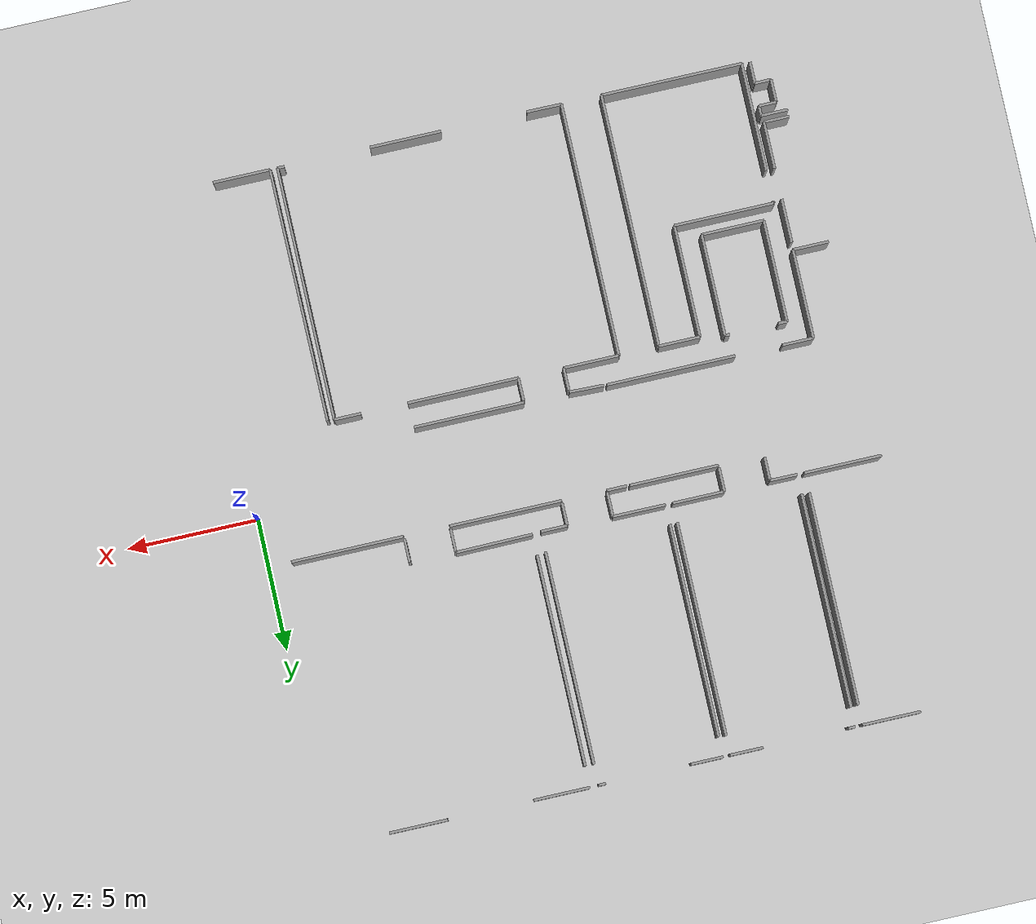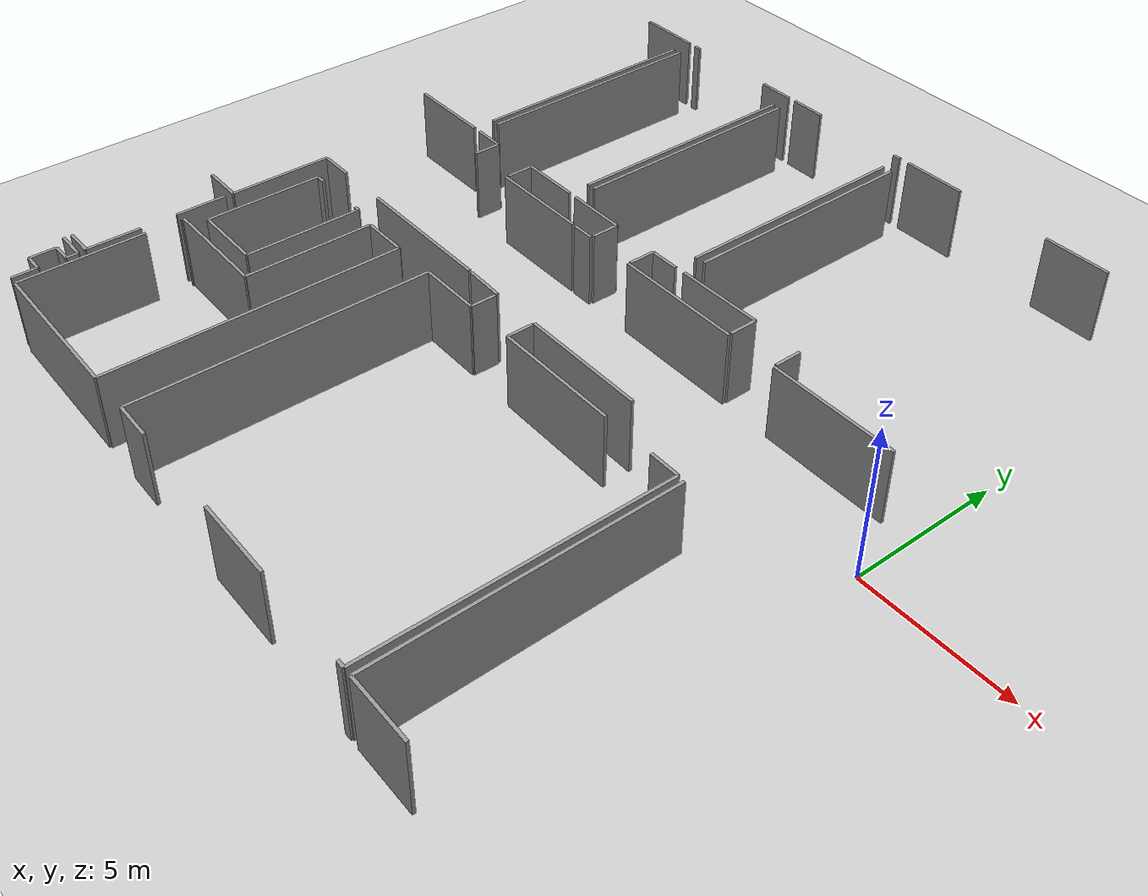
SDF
<sdf version="1.6">
 <world name="default">
  <model name="ground_plane">
   <static>1</static>
   <link name="link">
    <collision name="collision">
     <geometry><plane><normal>0 0 1</normal><size>100 100</size></plane></geometry>
     <surface><friction><ode><mu>100</mu><mu2>50</mu2></ode></friction></surface>
    </collision>
    <visual name="visual">
     <cast_shadows>0</cast_shadows>
     <geometry><plane><normal>0 0 1</normal><size>100 100</size></plane></geometry>
     <material>
      <script><uri>file://media/materials/scripts/gazebo.material</uri><name>Gazebo/Grey</name></script>
     </material>
    </visual>
   </link>
  </model>
  <model name="50052753">
   <static>1</static>
   <link name="Wall_25">
    <collision name="Wall_25_Collision">
     <geometry><box><size>3.38468759316 0.1 2.5</size></box></geometry>
     <pose>1.69234379658 0 1.25 0 0 0</pose>
    </collision>
    <visual name="Wall_25_Visual">
     <pose>1.69234379658 0 1.25 0 0 0</pose>
     <geometry><box><size>3.38468759316 0.1 2.5</size></box></geometry>
     <material>
      <script><uri>file://media/materials/scripts/gazebo.material</uri><name>Gazebo/Grey</name></script>
      <ambient>1 1 1 1</ambient>
     </material>
    </visual>
    <pose>21.7933186607 -10.6018533201 0 0 0 0.0</pose>
   </link>
   <link name="Wall_26">
    <collision name="Wall_26_Collision">
     <geometry><box><size>4.89334847111 0.1 2.5</size></box></geometry>
     <pose>2.44667423555 0 1.25 0 0 0</pose>
    </collision>
    <visual name="Wall_26_Visual">
     <pose>2.44667423555 0 1.25 0 0 0</pose>
     <geometry><box><size>4.89334847111 0.1 2.5</size></box></geometry>
     <material>
      <script><uri>file://media/materials/scripts/gazebo.material</uri><name>Gazebo/Grey</name></script>
      <ambient>1 1 1 1</ambient>
     </material>
    </visual>
    <pose>25.1780062538 -14.44397227 0 0 0 3.14159265359</pose>
   </link>
   <link name="Wall_27">
    <collision name="Wall_27_Collision">
     <geometry><box><size>1.17909718831 0.1 2.5</size></box></geometry>
     <pose>0.589548594153 0 1.25 0 0 0</pose>
    </collision>
    <visual name="Wall_27_Visual">
     <pose>0.589548594153 0 1.25 0 0 0</pose>
     <geometry><box><size>1.17909718831 0.1 2.5</size></box></geometry>
     <material>
      <script><uri>file://media/materials/scripts/gazebo.material</uri><name>Gazebo/Grey</name></script>
      <ambient>1 1 1 1</ambient>
     </material>
    </visual>
    <pose>18.4762436336 -14.44397227 0 0 0 3.14159265359</pose>
   </link>
   <link name="Wall_28">
    <collision name="Wall_28_Collision">
     <geometry><box><size>3.38570241591 0.1 2.5</size></box></geometry>
     <pose>1.69285120796 0 1.25 0 0 0</pose>
    </collision>
    <visual name="Wall_28_Visual">
     <pose>1.69285120796 0 1.25 0 0 0</pose>
     <geometry><box><size>3.38570241591 0.1 2.5</size></box></geometry>
     <material>
      <script><uri>file://media/materials/scripts/gazebo.material</uri><name>Gazebo/Grey</name></script>
      <ambient>1 1 1 1</ambient>
     </material>
    </visual>
    <pose>17.2971464453 -14.44397227 0 0 0 -1.57079632679</pose>
   </link>
   <link name="Wall_29">
    <collision name="Wall_29_Collision">
     <geometry><box><size>1.36151157849 0.1 2.5</size></box></geometry>
     <pose>0.680755789247 0 1.25 0 0 0</pose>
    </collision>
    <visual name="Wall_29_Visual">
     <pose>0.680755789247 0 1.25 0 0 0</pose>
     <geometry><box><size>1.36151157849 0.1 2.5</size></box></geometry>
     <material>
      <script><uri>file://media/materials/scripts/gazebo.material</uri><name>Gazebo/Grey</name></script>
      <ambient>1 1 1 1</ambient>
     </material>
    </visual>
    <pose>17.2971464453 -17.8296746859 0 0 0 3.14159265359</pose>
   </link>
   <link name="Wall_33">
    <collision name="Wall_33_Collision">
     <geometry><box><size>2.20825431458 0.1 2.5</size></box></geometry>
     <pose>1.10412715729 0 1.25 0 0 0</pose>
    </collision>
    <visual name="Wall_33_Visual">
     <pose>1.10412715729 0 1.25 0 0 0</pose>
     <geometry><box><size>2.20825431458 0.1 2.5</size></box></geometry>
     <material>
      <script><uri>file://media/materials/scripts/gazebo.material</uri><name>Gazebo/Grey</name></script>
      <ambient>1 1 1 1</ambient>
     </material>
    </visual>
    <pose>16.5268959743 -0.0228335119844 0 0 0 0.0</pose>
   </link>
   <link name="Wall_34">
    <collision name="Wall_34_Collision">
     <geometry><box><size>8.09524111554 0.1 2.5</size></box></geometry>
     <pose>4.04762055777 0 1.25 0 0 0</pose>
    </collision>
    <visual name="Wall_34_Visual">
     <pose>4.04762055777 0 1.25 0 0 0</pose>
     <geometry><box><size>8.09524111554 0.1 2.5</size></box></geometry>
     <material>
      <script><uri>file://media/materials/scripts/gazebo.material</uri><name>Gazebo/Grey</name></script>
      <ambient>1 1 1 1</ambient>
     </material>
    </visual>
    <pose>18.7351502889 -0.773548644894 0 0 0 -1.57079632679</pose>
   </link>
   <link name="Wall_35">
    <collision name="Wall_35_Collision">
     <geometry><box><size>2.93080811604 0.1 2.5</size></box></geometry>
     <pose>1.46540405802 0 1.25 0 0 0</pose>
    </collision>
    <visual name="Wall_35_Visual">
     <pose>1.46540405802 0 1.25 0 0 0</pose>
     <geometry><box><size>2.93080811604 0.1 2.5</size></box></geometry>
     <material>
      <script><uri>file://media/materials/scripts/gazebo.material</uri><name>Gazebo/Grey</name></script>
      <ambient>1 1 1 1</ambient>
     </material>
    </visual>
    <pose>18.7351502889 -9.61988545188 0 0 0 3.14159265359</pose>
   </link>
   <link name="Wall_39">
    <collision name="Wall_39_Collision">
     <geometry><box><size>8.12936453068 0.1 2.5</size></box></geometry>
     <pose>4.06468226534 0 1.25 0 0 0</pose>
    </collision>
    <visual name="Wall_39_Visual">
     <pose>4.06468226534 0 1.25 0 0 0</pose>
     <geometry><box><size>8.12936453068 0.1 2.5</size></box></geometry>
     <material>
      <script><uri>file://media/materials/scripts/gazebo.material</uri><name>Gazebo/Grey</name></script>
      <ambient>1 1 1 1</ambient>
     </material>
    </visual>
    <pose>19.0176515733 -8.88540748305 0 0 0 1.57079632679</pose>
   </link>
   <link name="Wall_40">
    <collision name="Wall_40_Collision">
     <geometry><box><size>0.256115892759 0.1 2.5</size></box></geometry>
     <pose>0.128057946379 0 1.25 0 0 0</pose>
    </collision>
    <visual name="Wall_40_Visual">
     <pose>0.128057946379 0 1.25 0 0 0</pose>
     <geometry><box><size>0.256115892759 0.1 2.5</size></box></geometry>
     <material>
      <script><uri>file://media/materials/scripts/gazebo.material</uri><name>Gazebo/Grey</name></script>
      <ambient>1 1 1 1</ambient>
     </material>
    </visual>
    <pose>19.0176515733 -0.0181399567432 0 0 0 0.0</pose>
   </link>
   <link name="Wall_41">
    <collision name="Wall_41_Collision">
     <geometry><box><size>1.24468010884 0.1 2.5</size></box></geometry>
     <pose>0.62234005442 0 1.25 0 0 0</pose>
    </collision>
    <visual name="Wall_41_Visual">
     <pose>0.62234005442 0 1.25 0 0 0</pose>
     <geometry><box><size>1.24468010884 0.1 2.5</size></box></geometry>
     <material>
      <script><uri>file://media/materials/scripts/gazebo.material</uri><name>Gazebo/Grey</name></script>
      <ambient>1 1 1 1</ambient>
     </material>
    </visual>
    <pose>22.5214539873 -0.0181399567432 0 0 0 0.0</pose>
   </link>
   <link name="Wall_42">
    <collision name="Wall_42_Collision">
     <geometry><box><size>8.11414218935 0.1 2.5</size></box></geometry>
     <pose>4.05707109468 0 1.25 0 0 0</pose>
    </collision>
    <visual name="Wall_42_Visual">
     <pose>4.05707109468 0 1.25 0 0 0</pose>
     <geometry><box><size>8.11414218935 0.1 2.5</size></box></geometry>
     <material>
      <script><uri>file://media/materials/scripts/gazebo.material</uri><name>Gazebo/Grey</name></script>
      <ambient>1 1 1 1</ambient>
     </material>
    </visual>
    <pose>23.7661340961 -0.752491072731 0 0 0 -1.57079632679</pose>
   </link>
   <link name="Wall_43">
    <collision name="Wall_43_Collision">
     <geometry><box><size>1.96647279324 0.1 2.5</size></box></geometry>
     <pose>0.983236396618 0 1.25 0 0 0</pose>
    </collision>
    <visual name="Wall_43_Visual">
     <pose>0.983236396618 0 1.25 0 0 0</pose>
     <geometry><box><size>1.96647279324 0.1 2.5</size></box></geometry>
     <material>
      <script><uri>file://media/materials/scripts/gazebo.material</uri><name>Gazebo/Grey</name></script>
      <ambient>1 1 1 1</ambient>
     </material>
    </visual>
    <pose>23.7661340961 -9.60225290652 0 0 0 3.14159265359</pose>
   </link>
   <link name="Wall_44">
    <collision name="Wall_44_Collision">
     <geometry><box><size>0.916384947641 0.1 2.5</size></box></geometry>
     <pose>0.458192473821 0 1.25 0 0 0</pose>
    </collision>
    <visual name="Wall_44_Visual">
     <pose>0.458192473821 0 1.25 0 0 0</pose>
     <geometry><box><size>0.916384947641 0.1 2.5</size></box></geometry>
     <material>
      <script><uri>file://media/materials/scripts/gazebo.material</uri><name>Gazebo/Grey</name></script>
      <ambient>1 1 1 1</ambient>
     </material>
    </visual>
    <pose>21.7996613029 -9.60225290652 0 0 0 -1.57079632679</pose>
   </link>
   <link name="Wall_45">
    <collision name="Wall_45_Collision">
     <geometry><box><size>0.891521790147 0.1 2.5</size></box></geometry>
     <pose>0.445760895074 0 1.25 0 0 0</pose>
    </collision>
    <visual name="Wall_45_Visual">
     <pose>0.445760895074 0 1.25 0 0 0</pose>
     <geometry><box><size>0.891521790147 0.1 2.5</size></box></geometry>
     <material>
      <script><uri>file://media/materials/scripts/gazebo.material</uri><name>Gazebo/Grey</name></script>
      <ambient>1 1 1 1</ambient>
     </material>
    </visual>
    <pose>20.0579717499 -10.5186378542 0 0 0 1.57079632679</pose>
   </link>
   <link name="Wall_46">
    <collision name="Wall_46_Collision">
     <geometry><box><size>1.04034895434 0.1 2.5</size></box></geometry>
     <pose>0.520174477172 0 1.25 0 0 0</pose>
    </collision>
    <visual name="Wall_46_Visual">
     <pose>0.520174477172 0 1.25 0 0 0</pose>
     <geometry><box><size>1.04034895434 0.1 2.5</size></box></geometry>
     <material>
      <script><uri>file://media/materials/scripts/gazebo.material</uri><name>Gazebo/Grey</name></script>
      <ambient>1 1 1 1</ambient>
     </material>
    </visual>
    <pose>20.0579717499 -9.62711606401 0 0 0 3.13415467346</pose>
   </link>
   <link name="Wall_47">
    <collision name="Wall_47_Collision">
     <geometry><box><size>3.87307104394 0.1 2.5</size></box></geometry>
     <pose>1.93653552197 0 1.25 0 0 0</pose>
    </collision>
    <visual name="Wall_47_Visual">
     <pose>1.93653552197 0 1.25 0 0 0</pose>
     <geometry><box><size>3.87307104394 0.1 2.5</size></box></geometry>
     <material>
      <script><uri>file://media/materials/scripts/gazebo.material</uri><name>Gazebo/Grey</name></script>
      <ambient>1 1 1 1</ambient>
     </material>
    </visual>
    <pose>18.1134444987 -19.1366395413 0 0 0 1.57079632679</pose>
   </link>
   <link name="Wall_48">
    <collision name="Wall_48_Collision">
     <geometry><box><size>0.321698813292 0.1 2.5</size></box></geometry>
     <pose>0.160849406646 0 1.25 0 0 0</pose>
    </collision>
    <visual name="Wall_48_Visual">
     <pose>0.160849406646 0 1.25 0 0 0</pose>
     <geometry><box><size>0.321698813292 0.1 2.5</size></box></geometry>
     <material>
      <script><uri>file://media/materials/scripts/gazebo.material</uri><name>Gazebo/Grey</name></script>
      <ambient>1 1 1 1</ambient>
     </material>
    </visual>
    <pose>18.1134444987 -15.2635684974 0 0 0 0.0</pose>
   </link>
   <link name="Wall_49">
    <collision name="Wall_49_Collision">
     <geometry><box><size>0.175437483747 0.1 2.5</size></box></geometry>
     <pose>0.0877187418735 0 1.25 0 0 0</pose>
    </collision>
    <visual name="Wall_49_Visual">
     <pose>0.0877187418735 0 1.25 0 0 0</pose>
     <geometry><box><size>0.175437483747 0.1 2.5</size></box></geometry>
     <material>
      <script><uri>file://media/materials/scripts/gazebo.material</uri><name>Gazebo/Grey</name></script>
      <ambient>1 1 1 1</ambient>
     </material>
    </visual>
    <pose>20.3079987061 -15.2635684974 0 0 0 0.0</pose>
   </link>
   <link name="Wall_50">
    <collision name="Wall_50_Collision">
     <geometry><box><size>3.86622099034 0.1 2.5</size></box></geometry>
     <pose>1.93311049517 0 1.25 0 0 0</pose>
    </collision>
    <visual name="Wall_50_Visual">
     <pose>1.93311049517 0 1.25 0 0 0</pose>
     <geometry><box><size>3.86622099034 0.1 2.5</size></box></geometry>
     <material>
      <script><uri>file://media/materials/scripts/gazebo.material</uri><name>Gazebo/Grey</name></script>
      <ambient>1 1 1 1</ambient>
     </material>
    </visual>
    <pose>20.4834361898 -15.2635684974 0 0 0 -1.57079632679</pose>
   </link>
   <link name="Wall_51">
    <collision name="Wall_51_Collision">
     <geometry><box><size>2.37000159057 0.1 2.5</size></box></geometry>
     <pose>1.18500079528 0 1.25 0 0 0</pose>
    </collision>
    <visual name="Wall_51_Visual">
     <pose>1.18500079528 0 1.25 0 0 0</pose>
     <geometry><box><size>2.37000159057 0.1 2.5</size></box></geometry>
     <material>
      <script><uri>file://media/materials/scripts/gazebo.material</uri><name>Gazebo/Grey</name></script>
      <ambient>1 1 1 1</ambient>
     </material>
    </visual>
    <pose>20.4834361898 -19.1297894877 0 0 0 -3.13870233353</pose>
   </link>
   <link name="Wall_57">
    <collision name="Wall_57_Collision">
     <geometry><box><size>1.65822038145 0.1 2.5</size></box></geometry>
     <pose>0.829110190723 0 1.25 0 0 0</pose>
    </collision>
    <visual name="Wall_57_Visual">
     <pose>0.829110190723 0 1.25 0 0 0</pose>
     <geometry><box><size>1.65822038145 0.1 2.5</size></box></geometry>
     <material>
      <script><uri>file://media/materials/scripts/gazebo.material</uri><name>Gazebo/Grey</name></script>
      <ambient>1 1 1 1</ambient>
     </material>
    </visual>
    <pose>17.2804018698 -18.1093852077 0 0 0 -1.57079632679</pose>
   </link>
   <link name="Wall_58">
    <collision name="Wall_58_Collision">
     <geometry><box><size>1.78240931607 0.1 2.5</size></box></geometry>
     <pose>0.891204658036 0 1.25 0 0 0</pose>
    </collision>
    <visual name="Wall_58_Visual">
     <pose>0.891204658036 0 1.25 0 0 0</pose>
     <geometry><box><size>1.78240931607 0.1 2.5</size></box></geometry>
     <material>
      <script><uri>file://media/materials/scripts/gazebo.material</uri><name>Gazebo/Grey</name></script>
      <ambient>1 1 1 1</ambient>
     </material>
    </visual>
    <pose>17.2804018698 -20.9450536905 0 0 0 -1.57079632679</pose>
   </link>
   <link name="Wall_59">
    <collision name="Wall_59_Collision">
     <geometry><box><size>0.953933389571 0.1 2.5</size></box></geometry>
     <pose>0.476966694786 0 1.25 0 0 0</pose>
    </collision>
    <visual name="Wall_59_Visual">
     <pose>0.476966694786 0 1.25 0 0 0</pose>
     <geometry><box><size>0.953933389571 0.1 2.5</size></box></geometry>
     <material>
      <script><uri>file://media/materials/scripts/gazebo.material</uri><name>Gazebo/Grey</name></script>
      <ambient>1 1 1 1</ambient>
     </material>
    </visual>
    <pose>17.2804018698 -22.7274630065 0 0 0 3.14159265359</pose>
   </link>
   <link name="Wall_61">
    <collision name="Wall_61_Collision">
     <geometry><box><size>4.10026448818 0.1 2.5</size></box></geometry>
     <pose>2.05013224409 0 1.25 0 0 0</pose>
    </collision>
    <visual name="Wall_61_Visual">
     <pose>2.05013224409 0 1.25 0 0 0</pose>
     <geometry><box><size>4.10026448818 0.1 2.5</size></box></geometry>
     <material>
      <script><uri>file://media/materials/scripts/gazebo.material</uri><name>Gazebo/Grey</name></script>
      <ambient>1 1 1 1</ambient>
     </material>
    </visual>
    <pose>17.6017201246 -25.0464598542 0 0 0 1.57079632679</pose>
   </link>
   <link name="Wall_62">
    <collision name="Wall_62_Collision">
     <geometry><box><size>0.0870210512295 0.1 2.5</size></box></geometry>
     <pose>0.0435105256148 0 1.25 0 0 0</pose>
    </collision>
    <visual name="Wall_62_Visual">
     <pose>0.0435105256148 0 1.25 0 0 0</pose>
     <geometry><box><size>0.0870210512295 0.1 2.5</size></box></geometry>
     <material>
      <script><uri>file://media/materials/scripts/gazebo.material</uri><name>Gazebo/Grey</name></script>
      <ambient>1 1 1 1</ambient>
     </material>
    </visual>
    <pose>17.6017201246 -19.7748362013 0 0 0 1.57079632679</pose>
   </link>
   <link name="Wall_63">
    <collision name="Wall_63_Collision">
     <geometry><box><size>3.79987695274 0.1 2.5</size></box></geometry>
     <pose>1.89993847637 0 1.25 0 0 0</pose>
    </collision>
    <visual name="Wall_63_Visual">
     <pose>1.89993847637 0 1.25 0 0 0</pose>
     <geometry><box><size>3.79987695274 0.1 2.5</size></box></geometry>
     <material>
      <script><uri>file://media/materials/scripts/gazebo.material</uri><name>Gazebo/Grey</name></script>
      <ambient>1 1 1 1</ambient>
     </material>
    </visual>
    <pose>17.6017201246 -19.68781515 0 0 0 0.0</pose>
   </link>
   <link name="Wall_64">
    <collision name="Wall_64_Collision">
     <geometry><box><size>4.26466577447 0.1 2.5</size></box></geometry>
     <pose>2.13233288723 0 1.25 0 0 0</pose>
    </collision>
    <visual name="Wall_64_Visual">
     <pose>2.13233288723 0 1.25 0 0 0</pose>
     <geometry><box><size>4.26466577447 0.1 2.5</size></box></geometry>
     <material>
      <script><uri>file://media/materials/scripts/gazebo.material</uri><name>Gazebo/Grey</name></script>
      <ambient>1 1 1 1</ambient>
     </material>
    </visual>
    <pose>21.4015970773 -19.68781515 0 0 0 1.57079632679</pose>
   </link>
   <link name="Wall_65">
    <collision name="Wall_65_Collision">
     <geometry><box><size>1.56663262782 0.1 2.5</size></box></geometry>
     <pose>0.78331631391 0 1.25 0 0 0</pose>
    </collision>
    <visual name="Wall_65_Visual">
     <pose>0.78331631391 0 1.25 0 0 0</pose>
     <geometry><box><size>1.56663262782 0.1 2.5</size></box></geometry>
     <material>
      <script><uri>file://media/materials/scripts/gazebo.material</uri><name>Gazebo/Grey</name></script>
      <ambient>1 1 1 1</ambient>
     </material>
    </visual>
    <pose>21.4015970773 -15.4231493756 0 0 0 0.0</pose>
   </link>
   <link name="Wall_66">
    <collision name="Wall_66_Collision">
     <geometry><box><size>9.62927256236 0.1 2.5</size></box></geometry>
     <pose>4.81463628118 0 1.25 0 0 0</pose>
    </collision>
    <visual name="Wall_66_Visual">
     <pose>4.81463628118 0 1.25 0 0 0</pose>
     <geometry><box><size>9.62927256236 0.1 2.5</size></box></geometry>
     <material>
      <script><uri>file://media/materials/scripts/gazebo.material</uri><name>Gazebo/Grey</name></script>
      <ambient>1 1 1 1</ambient>
     </material>
    </visual>
    <pose>22.9682297051 -15.4231493756 0 0 0 -1.57079632679</pose>
   </link>
   <link name="Wall_67">
    <collision name="Wall_67_Collision">
     <geometry><box><size>5.36651289244 0.1 2.5</size></box></geometry>
     <pose>2.68325644622 0 1.25 0 0 0</pose>
    </collision>
    <visual name="Wall_67_Visual">
     <pose>2.68325644622 0 1.25 0 0 0</pose>
     <geometry><box><size>5.36651289244 0.1 2.5</size></box></geometry>
     <material>
      <script><uri>file://media/materials/scripts/gazebo.material</uri><name>Gazebo/Grey</name></script>
      <ambient>1 1 1 1</ambient>
     </material>
    </visual>
    <pose>22.9682297051 -25.0524219379 0 0 0 3.14048167426</pose>
   </link>
   <link name="Wall_69">
    <collision name="Wall_69_Collision">
     <geometry><box><size>0.813507290867 0.1 2.5</size></box></geometry>
     <pose>0.406753645434 0 1.25 0 0 0</pose>
    </collision>
    <visual name="Wall_69_Visual">
     <pose>0.406753645434 0 1.25 0 0 0</pose>
     <geometry><box><size>0.813507290867 0.1 2.5</size></box></geometry>
     <material>
      <script><uri>file://media/materials/scripts/gazebo.material</uri><name>Gazebo/Grey</name></script>
      <ambient>1 1 1 1</ambient>
     </material>
    </visual>
    <pose>17.2863639535 -25.0337745698 0 0 0 1.57079632679</pose>
   </link>
   <link name="Wall_70">
    <collision name="Wall_70_Collision">
     <geometry><box><size>0.618027057712 0.1 2.5</size></box></geometry>
     <pose>0.309013528856 0 1.25 0 0 0</pose>
    </collision>
    <visual name="Wall_70_Visual">
     <pose>0.309013528856 0 1.25 0 0 0</pose>
     <geometry><box><size>0.618027057712 0.1 2.5</size></box></geometry>
     <material>
      <script><uri>file://media/materials/scripts/gazebo.material</uri><name>Gazebo/Grey</name></script>
      <ambient>1 1 1 1</ambient>
     </material>
    </visual>
    <pose>17.2863639535 -24.2202672789 0 0 0 3.14159265359</pose>
   </link>
   <link name="Wall_71">
    <collision name="Wall_71_Collision">
     <geometry><box><size>0.863994722922 0.1 2.5</size></box></geometry>
     <pose>0.431997361461 0 1.25 0 0 0</pose>
    </collision>
    <visual name="Wall_71_Visual">
     <pose>0.431997361461 0 1.25 0 0 0</pose>
     <geometry><box><size>0.863994722922 0.1 2.5</size></box></geometry>
     <material>
      <script><uri>file://media/materials/scripts/gazebo.material</uri><name>Gazebo/Grey</name></script>
      <ambient>1 1 1 1</ambient>
     </material>
    </visual>
    <pose>16.6683368958 -24.2202672789 0 0 0 1.57079632679</pose>
   </link>
   <link name="Wall_72">
    <collision name="Wall_72_Collision">
     <geometry><box><size>0.655956058175 0.1 2.5</size></box></geometry>
     <pose>0.327978029087 0 1.25 0 0 0</pose>
    </collision>
    <visual name="Wall_72_Visual">
     <pose>0.327978029087 0 1.25 0 0 0</pose>
     <geometry><box><size>0.655956058175 0.1 2.5</size></box></geometry>
     <material>
      <script><uri>file://media/materials/scripts/gazebo.material</uri><name>Gazebo/Grey</name></script>
      <ambient>1 1 1 1</ambient>
     </material>
    </visual>
    <pose>16.6683368958 -23.356272556 0 0 0 0.0</pose>
   </link>
   <link name="Wall_73">
    <collision name="Wall_73_Collision">
     <geometry><box><size>0.372186245346 0.1 2.5</size></box></geometry>
     <pose>0.186093122673 0 1.25 0 0 0</pose>
    </collision>
    <visual name="Wall_73_Visual">
     <pose>0.186093122673 0 1.25 0 0 0</pose>
     <geometry><box><size>0.372186245346 0.1 2.5</size></box></geometry>
     <material>
      <script><uri>file://media/materials/scripts/gazebo.material</uri><name>Gazebo/Grey</name></script>
      <ambient>1 1 1 1</ambient>
     </material>
    </visual>
    <pose>17.324292954 -23.356272556 0 0 0 1.57079632679</pose>
   </link>
   <link name="Wall_74">
    <collision name="Wall_74_Collision">
     <geometry><box><size>1.01545701909 0.1 2.5</size></box></geometry>
     <pose>0.507728509543 0 1.25 0 0 0</pose>
    </collision>
    <visual name="Wall_74_Visual">
     <pose>0.507728509543 0 1.25 0 0 0</pose>
     <geometry><box><size>1.01545701909 0.1 2.5</size></box></geometry>
     <material>
      <script><uri>file://media/materials/scripts/gazebo.material</uri><name>Gazebo/Grey</name></script>
      <ambient>1 1 1 1</ambient>
     </material>
    </visual>
    <pose>17.324292954 -22.9840863107 0 0 0 3.14159265359</pose>
   </link>
   <link name="Wall_103">
    <collision name="Wall_103_Collision">
     <geometry><box><size>8.09409943994 0.1 2.5</size></box></geometry>
     <pose>4.04704971997 0 1.25 0 0 0</pose>
    </collision>
    <visual name="Wall_103_Visual">
     <pose>4.04704971997 0 1.25 0 0 0</pose>
     <geometry><box><size>8.09409943994 0.1 2.5</size></box></geometry>
     <material>
      <script><uri>file://media/materials/scripts/gazebo.material</uri><name>Gazebo/Grey</name></script>
      <ambient>1 1 1 1</ambient>
     </material>
    </visual>
    <pose>24.0416584741 -8.85927579711 0 0 0 1.57079632679</pose>
   </link>
   <link name="Wall_104">
    <collision name="Wall_104_Collision">
     <geometry><box><size>1.21842157006 0.1 2.5</size></box></geometry>
     <pose>0.609210785029 0 1.25 0 0 0</pose>
    </collision>
    <visual name="Wall_104_Visual">
     <pose>0.609210785029 0 1.25 0 0 0</pose>
     <geometry><box><size>1.21842157006 0.1 2.5</size></box></geometry>
     <material>
      <script><uri>file://media/materials/scripts/gazebo.material</uri><name>Gazebo/Grey</name></script>
      <ambient>1 1 1 1</ambient>
     </material>
    </visual>
    <pose>24.0416584741 -0.0109093446148 0 0 0 0.0</pose>
   </link>
   <link name="Wall_105">
    <collision name="Wall_105_Collision">
     <geometry><box><size>0.275524377945 0.1 2.5</size></box></geometry>
     <pose>0.137762188973 0 1.25 0 0 0</pose>
    </collision>
    <visual name="Wall_105_Visual">
     <pose>0.137762188973 0 1.25 0 0 0</pose>
     <geometry><box><size>0.275524377945 0.1 2.5</size></box></geometry>
     <material>
      <script><uri>file://media/materials/scripts/gazebo.material</uri><name>Gazebo/Grey</name></script>
      <ambient>1 1 1 1</ambient>
     </material>
    </visual>
    <pose>28.5021850402 -0.0109093446148 0 0 0 0.0</pose>
   </link>
   <link name="Wall_106">
    <collision name="Wall_106_Collision">
     <geometry><box><size>8.08686882782 0.1 2.5</size></box></geometry>
     <pose>4.04343441391 0 1.25 0 0 0</pose>
    </collision>
    <visual name="Wall_106_Visual">
     <pose>4.04343441391 0 1.25 0 0 0</pose>
     <geometry><box><size>8.08686882782 0.1 2.5</size></box></geometry>
     <material>
      <script><uri>file://media/materials/scripts/gazebo.material</uri><name>Gazebo/Grey</name></script>
      <ambient>1 1 1 1</ambient>
     </material>
    </visual>
    <pose>28.7777094182 -0.801456270653 0 0 0 -1.57079632679</pose>
   </link>
   <link name="Wall_107">
    <collision name="Wall_107_Collision">
     <geometry><box><size>1.00086894198 0.1 2.5</size></box></geometry>
     <pose>0.500434470992 0 1.25 0 0 0</pose>
    </collision>
    <visual name="Wall_107_Visual">
     <pose>0.500434470992 0 1.25 0 0 0</pose>
     <geometry><box><size>1.00086894198 0.1 2.5</size></box></geometry>
     <material>
      <script><uri>file://media/materials/scripts/gazebo.material</uri><name>Gazebo/Grey</name></script>
      <ambient>1 1 1 1</ambient>
     </material>
    </visual>
    <pose>28.7777094182 -9.65718018812 0 0 0 3.14159265359</pose>
   </link>
   <link name="Wall_108">
    <collision name="Wall_108_Collision">
     <geometry><box><size>0.870971629361 0.1 2.5</size></box></geometry>
     <pose>0.435485814681 0 1.25 0 0 0</pose>
    </collision>
    <visual name="Wall_108_Visual">
     <pose>0.435485814681 0 1.25 0 0 0</pose>
     <geometry><box><size>0.870971629361 0.1 2.5</size></box></geometry>
     <material>
      <script><uri>file://media/materials/scripts/gazebo.material</uri><name>Gazebo/Grey</name></script>
      <ambient>1 1 1 1</ambient>
     </material>
    </visual>
    <pose>27.7768404762 -9.65718018812 0 0 0 -1.57079632679</pose>
   </link>
   <link name="Wall_109">
    <collision name="Wall_109_Collision">
     <geometry><box><size>0.915623830575 0.1 2.5</size></box></geometry>
     <pose>0.457811915288 0 1.25 0 0 0</pose>
    </collision>
    <visual name="Wall_109_Visual">
     <pose>0.457811915288 0 1.25 0 0 0</pose>
     <geometry><box><size>0.915623830575 0.1 2.5</size></box></geometry>
     <material>
      <script><uri>file://media/materials/scripts/gazebo.material</uri><name>Gazebo/Grey</name></script>
      <ambient>1 1 1 1</ambient>
     </material>
    </visual>
    <pose>26.0503732645 -10.5281518175 0 0 0 1.57079632679</pose>
   </link>
   <link name="Wall_110">
    <collision name="Wall_110_Collision">
     <geometry><box><size>2.00872401896 0.1 2.5</size></box></geometry>
     <pose>1.00436200948 0 1.25 0 0 0</pose>
    </collision>
    <visual name="Wall_110_Visual">
     <pose>1.00436200948 0 1.25 0 0 0</pose>
     <geometry><box><size>2.00872401896 0.1 2.5</size></box></geometry>
     <material>
      <script><uri>file://media/materials/scripts/gazebo.material</uri><name>Gazebo/Grey</name></script>
      <ambient>1 1 1 1</ambient>
     </material>
    </visual>
    <pose>26.0503732645 -9.61252798691 0 0 0 3.13856140301</pose>
   </link>
   <link name="Wall_111">
    <collision name="Wall_111_Collision">
     <geometry><box><size>8.02724799097 0.1 2.5</size></box></geometry>
     <pose>4.01362399548 0 1.25 0 0 0</pose>
    </collision>
    <visual name="Wall_111_Visual">
     <pose>4.01362399548 0 1.25 0 0 0</pose>
     <geometry><box><size>8.02724799097 0.1 2.5</size></box></geometry>
     <material>
      <script><uri>file://media/materials/scripts/gazebo.material</uri><name>Gazebo/Grey</name></script>
      <ambient>1 1 1 1</ambient>
     </material>
    </visual>
    <pose>29.1079073721 -8.83910619486 0 0 0 1.57079632679</pose>
   </link>
   <link name="Wall_112">
    <collision name="Wall_112_Collision">
     <geometry><box><size>2.13734357459 0.1 2.5</size></box></geometry>
     <pose>1.06867178729 0 1.25 0 0 0</pose>
    </collision>
    <visual name="Wall_112_Visual">
     <pose>1.06867178729 0 1.25 0 0 0</pose>
     <geometry><box><size>2.13734357459 0.1 2.5</size></box></geometry>
     <material>
      <script><uri>file://media/materials/scripts/gazebo.material</uri><name>Gazebo/Grey</name></script>
      <ambient>1 1 1 1</ambient>
     </material>
    </visual>
    <pose>29.1079073721 -0.0 0 0 0 0.0</pose>
   </link>
   <link name="Wall_113">
    <collision name="Wall_113_Collision">
     <geometry><box><size>2.21865624782 0.1 2.5</size></box></geometry>
     <pose>1.10932812391 0 1.25 0 0 0</pose>
    </collision>
    <visual name="Wall_113_Visual">
     <pose>1.10932812391 0 1.25 0 0 0</pose>
     <geometry><box><size>2.21865624782 0.1 2.5</size></box></geometry>
     <material>
      <script><uri>file://media/materials/scripts/gazebo.material</uri><name>Gazebo/Grey</name></script>
      <ambient>1 1 1 1</ambient>
     </material>
    </visual>
    <pose>34.5147561571 -0.0 0 0 0 0.0</pose>
   </link>
   <link name="Wall_116">
    <collision name="Wall_116_Collision">
     <geometry><box><size>0.89393199419 0.1 2.5</size></box></geometry>
     <pose>0.446965997095 0 1.25 0 0 0</pose>
    </collision>
    <visual name="Wall_116_Visual">
     <pose>0.446965997095 0 1.25 0 0 0</pose>
     <geometry><box><size>0.89393199419 0.1 2.5</size></box></geometry>
     <material>
      <script><uri>file://media/materials/scripts/gazebo.material</uri><name>Gazebo/Grey</name></script>
      <ambient>1 1 1 1</ambient>
     </material>
    </visual>
    <pose>33.782180981 -9.61899748197 0 0 0 -1.57079632679</pose>
   </link>
   <link name="Wall_117">
    <collision name="Wall_117_Collision">
     <geometry><box><size>0.91460900782 0.1 2.5</size></box></geometry>
     <pose>0.45730450391 0 1.25 0 0 0</pose>
    </collision>
    <visual name="Wall_117_Visual">
     <pose>0.45730450391 0 1.25 0 0 0</pose>
     <geometry><box><size>0.91460900782 0.1 2.5</size></box></geometry>
     <material>
      <script><uri>file://media/materials/scripts/gazebo.material</uri><name>Gazebo/Grey</name></script>
      <ambient>1 1 1 1</ambient>
     </material>
    </visual>
    <pose>32.0304700532 -10.5129294762 0 0 0 1.57079632679</pose>
   </link>
   <link name="Wall_118">
    <collision name="Wall_118_Collision">
     <geometry><box><size>2.92270204858 0.1 2.5</size></box></geometry>
     <pose>1.46135102429 0 1.25 0 0 0</pose>
    </collision>
    <visual name="Wall_118_Visual">
     <pose>1.46135102429 0 1.25 0 0 0</pose>
     <geometry><box><size>2.92270204858 0.1 2.5</size></box></geometry>
     <material>
      <script><uri>file://media/materials/scripts/gazebo.material</uri><name>Gazebo/Grey</name></script>
      <ambient>1 1 1 1</ambient>
     </material>
    </visual>
    <pose>32.0304700532 -9.59832046834 0 0 0 -3.13182691518</pose>
   </link>
   <link name="Wall_230">
    <collision name="Wall_230_Collision">
     <geometry><box><size>2.17692166203 0.1 2.5</size></box></geometry>
     <pose>1.08846083101 0 1.25 0 0 0</pose>
    </collision>
    <visual name="Wall_230_Visual">
     <pose>1.08846083101 0 1.25 0 0 0</pose>
     <geometry><box><size>2.17692166203 0.1 2.5</size></box></geometry>
     <material>
      <script><uri>file://media/materials/scripts/gazebo.material</uri><name>Gazebo/Grey</name></script>
      <ambient>1 1 1 1</ambient>
     </material>
    </visual>
    <pose>35.6324565688 -25.0582571688 0 0 0 0.0</pose>
   </link>
   <link name="Wall_237">
    <collision name="Wall_237_Collision">
     <geometry><box><size>9.62069275394 0.1 2.5</size></box></geometry>
     <pose>4.81034637697 0 1.25 0 0 0</pose>
    </collision>
    <visual name="Wall_237_Visual">
     <pose>4.81034637697 0 1.25 0 0 0</pose>
     <geometry><box><size>9.62069275394 0.1 2.5</size></box></geometry>
     <material>
      <script><uri>file://media/materials/scripts/gazebo.material</uri><name>Gazebo/Grey</name></script>
      <ambient>1 1 1 1</ambient>
     </material>
    </visual>
    <pose>35.6026461503 -15.4376105998 0 0 0 -1.56769774888</pose>
   </link>
   <link name="Wall_238">
    <collision name="Wall_238_Collision">
     <geometry><box><size>9.63396611761 0.1 2.5</size></box></geometry>
     <pose>4.8169830588 0 1.25 0 0 0</pose>
    </collision>
    <visual name="Wall_238_Visual">
     <pose>4.8169830588 0 1.25 0 0 0</pose>
     <geometry><box><size>9.63396611761 0.1 2.5</size></box></geometry>
     <material>
      <script><uri>file://media/materials/scripts/gazebo.material</uri><name>Gazebo/Grey</name></script>
      <ambient>1 1 1 1</ambient>
     </material>
    </visual>
    <pose>24.4980750081 -25.0464598542 0 0 0 1.57079632679</pose>
   </link>
   <link name="Wall_239">
    <collision name="Wall_239_Collision">
     <geometry><box><size>2.10461554074 0.1 2.5</size></box></geometry>
     <pose>1.05230777037 0 1.25 0 0 0</pose>
    </collision>
    <visual name="Wall_239_Visual">
     <pose>1.05230777037 0 1.25 0 0 0</pose>
     <geometry><box><size>2.10461554074 0.1 2.5</size></box></geometry>
     <material>
      <script><uri>file://media/materials/scripts/gazebo.material</uri><name>Gazebo/Grey</name></script>
      <ambient>1 1 1 1</ambient>
     </material>
    </visual>
    <pose>24.4980750081 -15.4124937366 0 0 0 0.0</pose>
   </link>
   <link name="Wall_240">
    <collision name="Wall_240_Collision">
     <geometry><box><size>0.853592789684 0.1 2.5</size></box></geometry>
     <pose>0.426796394842 0 1.25 0 0 0</pose>
    </collision>
    <visual name="Wall_240_Visual">
     <pose>0.426796394842 0 1.25 0 0 0</pose>
     <geometry><box><size>0.853592789684 0.1 2.5</size></box></geometry>
     <material>
      <script><uri>file://media/materials/scripts/gazebo.material</uri><name>Gazebo/Grey</name></script>
      <ambient>1 1 1 1</ambient>
     </material>
    </visual>
    <pose>26.6026905488 -15.4124937366 0 0 0 1.57079632679</pose>
   </link>
   <link name="Wall_241">
    <collision name="Wall_241_Collision">
     <geometry><box><size>0.863233605856 0.1 2.5</size></box></geometry>
     <pose>0.431616802928 0 1.25 0 0 0</pose>
    </collision>
    <visual name="Wall_241_Visual">
     <pose>0.431616802928 0 1.25 0 0 0</pose>
     <geometry><box><size>0.863233605856 0.1 2.5</size></box></geometry>
     <material>
      <script><uri>file://media/materials/scripts/gazebo.material</uri><name>Gazebo/Grey</name></script>
      <ambient>1 1 1 1</ambient>
     </material>
    </visual>
    <pose>28.3292846134 -14.558900947 0 0 0 -1.57079632679</pose>
   </link>
   <link name="Wall_242">
    <collision name="Wall_242_Collision">
     <geometry><box><size>4.22597565694 0.1 2.5</size></box></geometry>
     <pose>2.11298782847 0 1.25 0 0 0</pose>
    </collision>
    <visual name="Wall_242_Visual">
     <pose>2.11298782847 0 1.25 0 0 0</pose>
     <geometry><box><size>4.22597565694 0.1 2.5</size></box></geometry>
     <material>
      <script><uri>file://media/materials/scripts/gazebo.material</uri><name>Gazebo/Grey</name></script>
      <ambient>1 1 1 1</ambient>
     </material>
    </visual>
    <pose>28.3292846134 -15.4221345528 0 0 0 0.0</pose>
   </link>
   <link name="Wall_243">
    <collision name="Wall_243_Collision">
     <geometry><box><size>1.01545701909 0.1 2.5</size></box></geometry>
     <pose>0.507728509543 0 1.25 0 0 0</pose>
    </collision>
    <visual name="Wall_243_Visual">
     <pose>0.507728509543 0 1.25 0 0 0</pose>
     <geometry><box><size>1.01545701909 0.1 2.5</size></box></geometry>
     <material>
      <script><uri>file://media/materials/scripts/gazebo.material</uri><name>Gazebo/Grey</name></script>
      <ambient>1 1 1 1</ambient>
     </material>
    </visual>
    <pose>34.3337371482 -15.4221345528 0 0 0 0.0</pose>
   </link>
   <link name="Wall_244">
    <collision name="Wall_244_Collision">
     <geometry><box><size>9.63282444201 0.1 2.5</size></box></geometry>
     <pose>4.816412221 0 1.25 0 0 0</pose>
    </collision>
    <visual name="Wall_244_Visual">
     <pose>4.816412221 0 1.25 0 0 0</pose>
     <geometry><box><size>9.63282444201 0.1 2.5</size></box></geometry>
     <material>
      <script><uri>file://media/materials/scripts/gazebo.material</uri><name>Gazebo/Grey</name></script>
      <ambient>1 1 1 1</ambient>
     </material>
    </visual>
    <pose>35.3491941673 -15.4221345528 0 0 0 -1.57079632679</pose>
   </link>
   <link name="Wall_245">
    <collision name="Wall_245_Collision">
     <geometry><box><size>0.254213100093 0.1 2.5</size></box></geometry>
     <pose>0.127106550047 0 1.25 0 0 0</pose>
    </collision>
    <visual name="Wall_245_Visual">
     <pose>0.127106550047 0 1.25 0 0 0</pose>
     <geometry><box><size>0.254213100093 0.1 2.5</size></box></geometry>
     <material>
      <script><uri>file://media/materials/scripts/gazebo.material</uri><name>Gazebo/Grey</name></script>
      <ambient>1 1 1 1</ambient>
     </material>
    </visual>
    <pose>35.3491941673 -25.0549589948 0 0 0 3.14159265359</pose>
   </link>
   <link name="Wall_246">
    <collision name="Wall_246_Collision">
     <geometry><box><size>2.71262122375 0.1 2.5</size></box></geometry>
     <pose>1.35631061187 0 1.25 0 0 0</pose>
    </collision>
    <visual name="Wall_246_Visual">
     <pose>1.35631061187 0 1.25 0 0 0</pose>
     <geometry><box><size>2.71262122375 0.1 2.5</size></box></geometry>
     <material>
      <script><uri>file://media/materials/scripts/gazebo.material</uri><name>Gazebo/Grey</name></script>
      <ambient>1 1 1 1</ambient>
     </material>
    </visual>
    <pose>31.8167230105 -25.0549589948 0 0 0 3.14159265359</pose>
   </link>
   <link name="Wall_247">
    <collision name="Wall_247_Collision">
     <geometry><box><size>1.32779592341 0.1 2.5</size></box></geometry>
     <pose>0.663897961706 0 1.25 0 0 0</pose>
    </collision>
    <visual name="Wall_247_Visual">
     <pose>0.663897961706 0 1.25 0 0 0</pose>
     <geometry><box><size>1.32779592341 0.1 2.5</size></box></geometry>
     <material>
      <script><uri>file://media/materials/scripts/gazebo.material</uri><name>Gazebo/Grey</name></script>
      <ambient>1 1 1 1</ambient>
     </material>
    </visual>
    <pose>25.82584373 -25.0549589948 0 0 0 3.13519167098</pose>
   </link>
   <link name="Wall_248">
    <collision name="Wall_248_Collision">
     <geometry><box><size>0.754647571085 0.1 2.5</size></box></geometry>
     <pose>0.377323785543 0 1.25 0 0 0</pose>
    </collision>
    <visual name="Wall_248_Visual">
     <pose>0.377323785543 0 1.25 0 0 0</pose>
     <geometry><box><size>0.754647571085 0.1 2.5</size></box></geometry>
     <material>
      <script><uri>file://media/materials/scripts/gazebo.material</uri><name>Gazebo/Grey</name></script>
      <ambient>1 1 1 1</ambient>
     </material>
    </visual>
    <pose>25.2961062519 -10.6073079924 0 0 0 0.0</pose>
   </link>
   <link name="Wall_249">
    <collision name="Wall_249_Collision">
     <geometry><box><size>4.27785847028 0.1 2.5</size></box></geometry>
     <pose>2.13892923514 0 1.25 0 0 0</pose>
    </collision>
    <visual name="Wall_249_Visual">
     <pose>2.13892923514 0 1.25 0 0 0</pose>
     <geometry><box><size>4.27785847028 0.1 2.5</size></box></geometry>
     <material>
      <script><uri>file://media/materials/scripts/gazebo.material</uri><name>Gazebo/Grey</name></script>
      <ambient>1 1 1 1</ambient>
     </material>
    </visual>
    <pose>27.7694830112 -10.6073079924 0 0 0 0.0</pose>
   </link>
   <link name="Wall_250">
    <collision name="Wall_250_Collision">
     <geometry><box><size>4.27430659064 0.1 2.5</size></box></geometry>
     <pose>2.13715329532 0 1.25 0 0 0</pose>
    </collision>
    <visual name="Wall_250_Visual">
     <pose>2.13715329532 0 1.25 0 0 0</pose>
     <geometry><box><size>4.27430659064 0.1 2.5</size></box></geometry>
     <material>
      <script><uri>file://media/materials/scripts/gazebo.material</uri><name>Gazebo/Grey</name></script>
      <ambient>1 1 1 1</ambient>
     </material>
    </visual>
    <pose>33.7906801215 -10.6073079924 0 0 0 0.0</pose>
   </link>
   <link name="Wall_266">
    <collision name="Wall_266_Collision">
     <geometry><box><size>4.19946341247 0.1 2.5</size></box></geometry>
     <pose>2.09973170623 0 1.25 0 0 0</pose>
    </collision>
    <visual name="Wall_266_Visual">
     <pose>2.09973170623 0 1.25 0 0 0</pose>
     <geometry><box><size>4.19946341247 0.1 2.5</size></box></geometry>
     <material>
      <script><uri>file://media/materials/scripts/gazebo.material</uri><name>Gazebo/Grey</name></script>
      <ambient>1 1 1 1</ambient>
     </material>
    </visual>
    <pose>32.5202488853 -14.490400411 0 0 0 3.14159265359</pose>
   </link>
   <link name="Wall_267">
    <collision name="Wall_267_Collision">
     <geometry><box><size>1.30388309221 0.1 2.5</size></box></geometry>
     <pose>0.651941546103 0 1.25 0 0 0</pose>
    </collision>
    <visual name="Wall_267_Visual">
     <pose>0.651941546103 0 1.25 0 0 0</pose>
     <geometry><box><size>1.30388309221 0.1 2.5</size></box></geometry>
     <material>
      <script><uri>file://media/materials/scripts/gazebo.material</uri><name>Gazebo/Grey</name></script>
      <ambient>1 1 1 1</ambient>
     </material>
    </visual>
    <pose>26.5993923749 -14.490400411 0 0 0 3.1113313083</pose>
   </link>
   <pose>-39.0 12.5312175336 0 0 0 0</pose>
  </model>
 </world>
</sdf>
